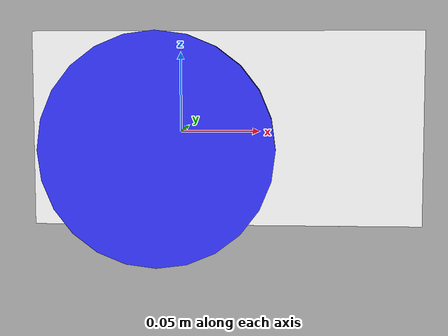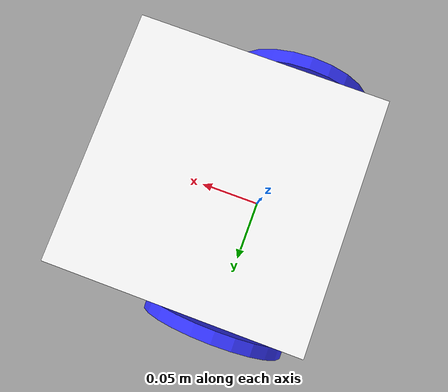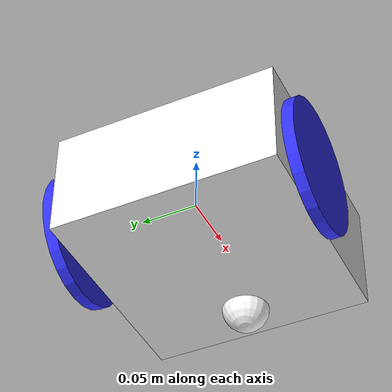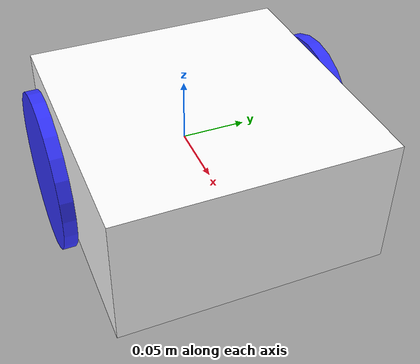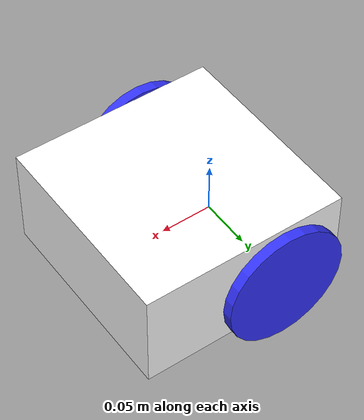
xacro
<?xml version="1.0"?>
<robot xmlns:xacro="http://www.ros.org/wiki/xacro">

    <xacro:include filename="inertial_macros.xacro"/>

    <xacro:property name="chassis_length" value="0.2"/>
    <xacro:property name="chassis_width" value="0.2"/>
    <xacro:property name="chassis_height" value="0.1"/>
    <xacro:property name="chassis_mass" value="5.0"/>
    <xacro:property name="wheel_radius" value="0.06"/>
    <xacro:property name="wheel_thickness" value="0.01"/>
    <xacro:property name="wheel_mass" value="0.05"/>
    <xacro:property name="wheel_offset_x" value="0.065"/>
    <xacro:property name="wheel_offset_y" value="0.108"/>
    <xacro:property name="wheel_offset_z" value="0.04"/>
    <xacro:property name="caster_wheel_radius" value="0.021"/>
    <xacro:property name="caster_wheel_mass" value="2"/>
    <xacro:property name="caster_wheel_offset_x" value="0.165"/>
    <xacro:property name="caster_wheel_offset_z" value="${wheel_offset_z - wheel_radius + caster_wheel_radius}"/>

    <material name="white">
        <color rgba="1 1 1 1" />
    </material>

    <material name="orange">
        <color rgba="1 0.3 0.1 1"/>
    </material>

    <material name="blue">
        <color rgba="0.2 0.2 1 1"/>
    </material>

    <material name="black">
        <color rgba="0 0 0 1"/>
    </material>

    <material name="red">
        <color rgba="1 0 0 1"/>
    </material>

    <!-- BASE LINK -->
    <link name="base_link">
    </link>

    <!-- BASE_FOOTPRINT LINK -->
    <joint name="base_footprint_joint" type="fixed">
        <parent link="base_link"/>
        <child link="base_footprint"/>
        <origin xyz="0 0 0" rpy="0 0 0"/>
    </joint>

    <link name="base_footprint">
    </link>

    <!-- CHASSIS LINK -->
    <joint name="chassis_joint" type="fixed">
        <parent link="base_link"/>
        <child link="chassis"/>
        <origin xyz="${-wheel_offset_x} 0 ${-wheel_offset_z}"/>
    </joint>

    <link name="chassis">
        <visual>
            <origin xyz="${chassis_length/2} 0 ${chassis_height/2}"/>
            <geometry>
                <box size="${chassis_length} ${chassis_width} ${chassis_height}"/>
            </geometry>
            <material name="white"/>
        </visual>
        <collision>
            <origin xyz="${chassis_length/2} 0 ${chassis_height/2}"/>
            <geometry>
                <box size="${chassis_length} ${chassis_width} ${chassis_height}"/>
            </geometry>
        </collision>
        <xacro:inertial_box mass="${chassis_mass}" x="${chassis_length}" y="${chassis_width}" z="${chassis_height}">
            <origin xyz="${chassis_length/2} 0 ${chassis_height/2}" rpy="0 0 0"/>
        </xacro:inertial_box>
    </link>

    <gazebo reference="chassis">
        <material>Gazebo/white</material>
    </gazebo>

    <!-- LEFT WHEEL LINK -->
    <joint name="left_wheel_joint" type="continuous">
        <parent link="base_link"/>
        <child link="left_wheel"/>
        <origin xyz="0 ${wheel_offset_y} 0" rpy="-${pi/2} 0 0" />
        <axis xyz="0 0 1"/>
        <dynamics damping="0.7" friction="1.2"/>
    </joint>

    <link name="left_wheel">
        <visual>
            <geometry>
                <cylinder radius="${wheel_radius}" length="${wheel_thickness}"/>
            </geometry>
            <material name="blue"/>
        </visual>
        <collision>
            <geometry>
                <cylinder radius="${wheel_radius}" length="${wheel_thickness}"/>
            </geometry>
        </collision>
        <xacro:inertial_cylinder mass="${wheel_mass}" length="${wheel_thickness}" radius="${wheel_radius}">
            <origin xyz="0 0 0" rpy="0 0 0"/>
        </xacro:inertial_cylinder>
    </link>

    <gazebo reference="left_wheel">
        <material>Gazebo/Blue</material>
        <mu1>10.0</mu1>
        <mu2>10.0</mu2>
        <kp>1000000.0</kp>
        <kd>100.0</kd>
        <fdir1>1 0 0</fdir1>
        <minDepth>0.001</minDepth>
        <maxVel>1.0</maxVel>
    </gazebo>

    <!-- RIGHT WHEEL LINK -->
    <joint name="right_wheel_joint" type="continuous">
        <parent link="base_link"/>
        <child link="right_wheel"/>
        <origin xyz="0 ${-wheel_offset_y} 0" rpy="${pi/2} 0 0" />
        <axis xyz="0 0 -1"/>
        <dynamics damping="0.7" friction="1.2"/>
    </joint>

    <link name="right_wheel">
        <visual>
            <geometry>
                <cylinder radius="${wheel_radius}" length="${wheel_thickness}"/>
            </geometry>
            <material name="blue"/>
        </visual>
        <collision>
            <geometry>
                <cylinder radius="${wheel_radius}" length="${wheel_thickness}"/>
            </geometry>
        </collision>
        <xacro:inertial_cylinder mass="${wheel_mass}" length="${wheel_thickness}" radius="${wheel_radius}">
            <origin xyz="0 0 0" rpy="0 0 0"/>
        </xacro:inertial_cylinder>
    </link>

    <gazebo reference="right_wheel">
        <material>Gazebo/Blue</material>
        <mu1>10.0</mu1>
        <mu2>10.0</mu2>
        <kp>1000000.0</kp>
        <kd>100.0</kd>
        <fdir1>1 0 0</fdir1>
        <minDepth>0.001</minDepth>
        <maxVel>1.0</maxVel>
    </gazebo>

    <!-- CASTER WHEEL LINK -->
    <joint name="caster_wheel_joint" type="fixed">
        <parent link="chassis"/>
        <child link="caster_wheel"/>
        <origin xyz="${caster_wheel_offset_x} 0 ${caster_wheel_offset_z}"/>
    </joint>

    <link name="caster_wheel">
        <visual>
            <geometry>
                <sphere radius="${caster_wheel_radius}"/>
            </geometry>
            <material name="white"/>
        </visual>
        <collision>
            <geometry>
                <sphere radius="${caster_wheel_radius}"/>
            </geometry>
        </collision>
        <xacro:inertial_sphere mass="${caster_wheel_mass}" radius="${caster_wheel_radius}">
            <origin xyz="0 0 0" rpy="0 0 0"/>
        </xacro:inertial_sphere>
    </link>

    <gazebo reference="caster_wheel">
        <material>Gazebo/White</material>
        <mu1>0.1.0</mu1>
        <mu2>0.1.0</mu2>
        <kp>1000000.0</kp>
        <kd>100.0</kd>
        <fdir1>1 0 0</fdir1>
        <minDepth>0.001</minDepth>
        <maxVel>1.0</maxVel>
    </gazebo>

    <!-- Transmissions for ROS Control -->
    <transmission name="left_wheel_trans">
        <type>transmission_interface/SimpleTransmission</type>
        <joint name="left_wheel_joint">
            <hardwareInterface>hardware_interface/VelocityJointInterface</hardwareInterface>
        </joint>
        <actuator name="left_wheel_motor">
            <hardwareInterface>hardware_interface/VelocityJointInterface</hardwareInterface>
            <mechanicalReduction>1</mechanicalReduction>
        </actuator>
    </transmission>

    <transmission name="right_wheel_trans">
        <type>transmission_interface/SimpleTransmission</type>
        <joint name="right_wheel_joint">
            <hardwareInterface>hardware_interface/VelocityJointInterface</hardwareInterface>
        </joint>
        <actuator name="right_wheel_motor">
            <hardwareInterface>hardware_interface/VelocityJointInterface</hardwareInterface>
            <mechanicalReduction>1</mechanicalReduction>
        </actuator>
    </transmission>

    <gazebo>
        <plugin name="differential_drive_controller" filename="libgazebo_ros_diff_drive.so">
          <update_rate>100</update_rate>
          <left_joint>left_wheel_joint</left_joint>
          <right_joint>right_wheel_joint</right_joint>
          <wheel_separation>${2 * wheel_offset_y}</wheel_separation>
          <wheel_diameter>${2 * wheel_radius}</wheel_diameter>
          <wheel_acceleration>5.0</wheel_acceleration>
          <wheel_torque>25</wheel_torque>
          <command_topic>cmd_vel</command_topic>
          <odometry_topic>odom</odometry_topic>
          <odometry_frame>odom</odometry_frame>
          <robot_base_frame>base_link</robot_base_frame>
          <publish_rate>100</publish_rate>
          <publish_odom>true</publish_odom>
          <publish_wheel_tf>true</publish_wheel_tf>
          <publish_wheel_joint_state>true</publish_wheel_joint_state>

          <max_velocity>10.0</max_velocity>

          <ros>
            <namespace>/</namespace>
          </ros>
        </plugin>
      </gazebo>

</robot>
